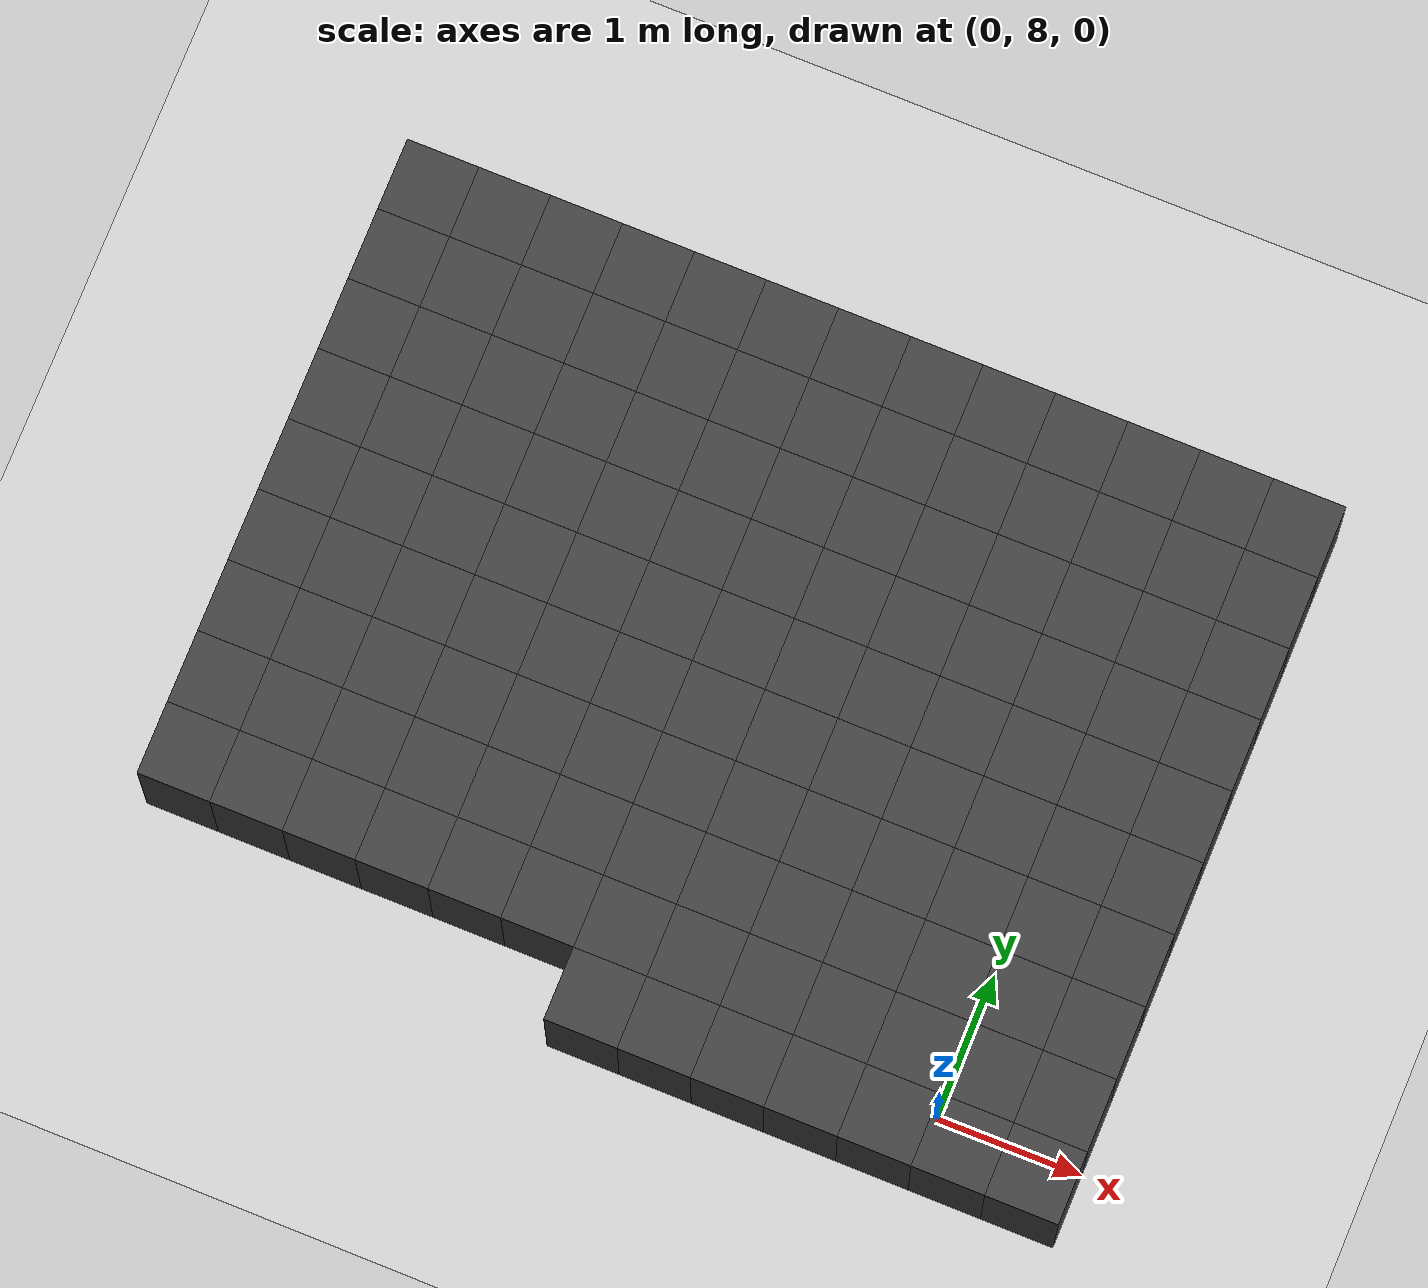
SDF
<sdf version="1.7">
 <world name="map_12818">
  <model name="ground_plane">
   <static>true</static>
   <link name="link">
    <collision name="collision">
     <geometry><plane><normal>0 0 1</normal><size>200 200</size></plane></geometry>
    </collision>
    <visual name="visual">
     <geometry><plane><normal>0 0 1</normal><size>200 200</size></plane></geometry>
     <material><ambient>0.8 0.8 0.8 1</ambient><diffuse>0.8 0.8 0.8 1</diffuse></material>
    </visual>
   </link>
  </model>
  <model name="maze_environment">
   <static>true</static>
   <link name="wall_14">
    <pose>-5.250 12.250 0.500 0 0 0</pose>
    <collision name="col"><geometry><box><size>0.5 0.5 1.0</size></box></geometry></collision>
    <visual name="vis">
     <geometry><box><size>0.5 0.5 1.0</size></box></geometry>
     <material><ambient>0.15 0.15 0.15 1</ambient><diffuse>0.25 0.25 0.25 1</diffuse></material>
    </visual>
   </link>
   <link name="wall_15">
    <pose>-4.750 12.250 0.500 0 0 0</pose>
    <collision name="col"><geometry><box><size>0.5 0.5 1.0</size></box></geometry></collision>
    <visual name="vis">
     <geometry><box><size>0.5 0.5 1.0</size></box></geometry>
     <material><ambient>0.15 0.15 0.15 1</ambient><diffuse>0.25 0.25 0.25 1</diffuse></material>
    </visual>
   </link>
   <link name="wall_16">
    <pose>-4.250 12.250 0.500 0 0 0</pose>
    <collision name="col"><geometry><box><size>0.5 0.5 1.0</size></box></geometry></collision>
    <visual name="vis">
     <geometry><box><size>0.5 0.5 1.0</size></box></geometry>
     <material><ambient>0.15 0.15 0.15 1</ambient><diffuse>0.25 0.25 0.25 1</diffuse></material>
    </visual>
   </link>
   <link name="wall_17">
    <pose>-3.750 12.250 0.500 0 0 0</pose>
    <collision name="col"><geometry><box><size>0.5 0.5 1.0</size></box></geometry></collision>
    <visual name="vis">
     <geometry><box><size>0.5 0.5 1.0</size></box></geometry>
     <material><ambient>0.15 0.15 0.15 1</ambient><diffuse>0.25 0.25 0.25 1</diffuse></material>
    </visual>
   </link>
   <link name="wall_18">
    <pose>-3.250 12.250 0.500 0 0 0</pose>
    <collision name="col"><geometry><box><size>0.5 0.5 1.0</size></box></geometry></collision>
    <visual name="vis">
     <geometry><box><size>0.5 0.5 1.0</size></box></geometry>
     <material><ambient>0.15 0.15 0.15 1</ambient><diffuse>0.25 0.25 0.25 1</diffuse></material>
    </visual>
   </link>
   <link name="wall_19">
    <pose>-2.750 12.250 0.500 0 0 0</pose>
    <collision name="col"><geometry><box><size>0.5 0.5 1.0</size></box></geometry></collision>
    <visual name="vis">
     <geometry><box><size>0.5 0.5 1.0</size></box></geometry>
     <material><ambient>0.15 0.15 0.15 1</ambient><diffuse>0.25 0.25 0.25 1</diffuse></material>
    </visual>
   </link>
   <link name="wall_20">
    <pose>-2.250 12.250 0.500 0 0 0</pose>
    <collision name="col"><geometry><box><size>0.5 0.5 1.0</size></box></geometry></collision>
    <visual name="vis">
     <geometry><box><size>0.5 0.5 1.0</size></box></geometry>
     <material><ambient>0.15 0.15 0.15 1</ambient><diffuse>0.25 0.25 0.25 1</diffuse></material>
    </visual>
   </link>
   <link name="wall_21">
    <pose>-1.750 12.250 0.500 0 0 0</pose>
    <collision name="col"><geometry><box><size>0.5 0.5 1.0</size></box></geometry></collision>
    <visual name="vis">
     <geometry><box><size>0.5 0.5 1.0</size></box></geometry>
     <material><ambient>0.15 0.15 0.15 1</ambient><diffuse>0.25 0.25 0.25 1</diffuse></material>
    </visual>
   </link>
   <link name="wall_22">
    <pose>-1.250 12.250 0.500 0 0 0</pose>
    <collision name="col"><geometry><box><size>0.5 0.5 1.0</size></box></geometry></collision>
    <visual name="vis">
     <geometry><box><size>0.5 0.5 1.0</size></box></geometry>
     <material><ambient>0.15 0.15 0.15 1</ambient><diffuse>0.25 0.25 0.25 1</diffuse></material>
    </visual>
   </link>
   <link name="wall_23">
    <pose>-0.750 12.250 0.500 0 0 0</pose>
    <collision name="col"><geometry><box><size>0.5 0.5 1.0</size></box></geometry></collision>
    <visual name="vis">
     <geometry><box><size>0.5 0.5 1.0</size></box></geometry>
     <material><ambient>0.15 0.15 0.15 1</ambient><diffuse>0.25 0.25 0.25 1</diffuse></material>
    </visual>
   </link>
   <link name="wall_24">
    <pose>-0.250 12.250 0.500 0 0 0</pose>
    <collision name="col"><geometry><box><size>0.5 0.5 1.0</size></box></geometry></collision>
    <visual name="vis">
     <geometry><box><size>0.5 0.5 1.0</size></box></geometry>
     <material><ambient>0.15 0.15 0.15 1</ambient><diffuse>0.25 0.25 0.25 1</diffuse></material>
    </visual>
   </link>
   <link name="wall_25">
    <pose>0.250 12.250 0.500 0 0 0</pose>
    <collision name="col"><geometry><box><size>0.5 0.5 1.0</size></box></geometry></collision>
    <visual name="vis">
     <geometry><box><size>0.5 0.5 1.0</size></box></geometry>
     <material><ambient>0.15 0.15 0.15 1</ambient><diffuse>0.25 0.25 0.25 1</diffuse></material>
    </visual>
   </link>
   <link name="wall_26">
    <pose>0.750 12.250 0.500 0 0 0</pose>
    <collision name="col"><geometry><box><size>0.5 0.5 1.0</size></box></geometry></collision>
    <visual name="vis">
     <geometry><box><size>0.5 0.5 1.0</size></box></geometry>
     <material><ambient>0.15 0.15 0.15 1</ambient><diffuse>0.25 0.25 0.25 1</diffuse></material>
    </visual>
   </link>
   <link name="wall_61">
    <pose>-5.250 11.750 0.500 0 0 0</pose>
    <collision name="col"><geometry><box><size>0.5 0.5 1.0</size></box></geometry></collision>
    <visual name="vis">
     <geometry><box><size>0.5 0.5 1.0</size></box></geometry>
     <material><ambient>0.15 0.15 0.15 1</ambient><diffuse>0.25 0.25 0.25 1</diffuse></material>
    </visual>
   </link>
   <link name="wall_62">
    <pose>-4.750 11.750 0.500 0 0 0</pose>
    <collision name="col"><geometry><box><size>0.5 0.5 1.0</size></box></geometry></collision>
    <visual name="vis">
     <geometry><box><size>0.5 0.5 1.0</size></box></geometry>
     <material><ambient>0.15 0.15 0.15 1</ambient><diffuse>0.25 0.25 0.25 1</diffuse></material>
    </visual>
   </link>
   <link name="wall_63">
    <pose>-4.250 11.750 0.500 0 0 0</pose>
    <collision name="col"><geometry><box><size>0.5 0.5 1.0</size></box></geometry></collision>
    <visual name="vis">
     <geometry><box><size>0.5 0.5 1.0</size></box></geometry>
     <material><ambient>0.15 0.15 0.15 1</ambient><diffuse>0.25 0.25 0.25 1</diffuse></material>
    </visual>
   </link>
   <link name="wall_64">
    <pose>-3.750 11.750 0.500 0 0 0</pose>
    <collision name="col"><geometry><box><size>0.5 0.5 1.0</size></box></geometry></collision>
    <visual name="vis">
     <geometry><box><size>0.5 0.5 1.0</size></box></geometry>
     <material><ambient>0.15 0.15 0.15 1</ambient><diffuse>0.25 0.25 0.25 1</diffuse></material>
    </visual>
   </link>
   <link name="wall_65">
    <pose>-3.250 11.750 0.500 0 0 0</pose>
    <collision name="col"><geometry><box><size>0.5 0.5 1.0</size></box></geometry></collision>
    <visual name="vis">
     <geometry><box><size>0.5 0.5 1.0</size></box></geometry>
     <material><ambient>0.15 0.15 0.15 1</ambient><diffuse>0.25 0.25 0.25 1</diffuse></material>
    </visual>
   </link>
   <link name="wall_66">
    <pose>-2.750 11.750 0.500 0 0 0</pose>
    <collision name="col"><geometry><box><size>0.5 0.5 1.0</size></box></geometry></collision>
    <visual name="vis">
     <geometry><box><size>0.5 0.5 1.0</size></box></geometry>
     <material><ambient>0.15 0.15 0.15 1</ambient><diffuse>0.25 0.25 0.25 1</diffuse></material>
    </visual>
   </link>
   <link name="wall_67">
    <pose>-2.250 11.750 0.500 0 0 0</pose>
    <collision name="col"><geometry><box><size>0.5 0.5 1.0</size></box></geometry></collision>
    <visual name="vis">
     <geometry><box><size>0.5 0.5 1.0</size></box></geometry>
     <material><ambient>0.15 0.15 0.15 1</ambient><diffuse>0.25 0.25 0.25 1</diffuse></material>
    </visual>
   </link>
   <link name="wall_68">
    <pose>-1.750 11.750 0.500 0 0 0</pose>
    <collision name="col"><geometry><box><size>0.5 0.5 1.0</size></box></geometry></collision>
    <visual name="vis">
     <geometry><box><size>0.5 0.5 1.0</size></box></geometry>
     <material><ambient>0.15 0.15 0.15 1</ambient><diffuse>0.25 0.25 0.25 1</diffuse></material>
    </visual>
   </link>
   <link name="wall_69">
    <pose>-1.250 11.750 0.500 0 0 0</pose>
    <collision name="col"><geometry><box><size>0.5 0.5 1.0</size></box></geometry></collision>
    <visual name="vis">
     <geometry><box><size>0.5 0.5 1.0</size></box></geometry>
     <material><ambient>0.15 0.15 0.15 1</ambient><diffuse>0.25 0.25 0.25 1</diffuse></material>
    </visual>
   </link>
   <link name="wall_70">
    <pose>-0.750 11.750 0.500 0 0 0</pose>
    <collision name="col"><geometry><box><size>0.5 0.5 1.0</size></box></geometry></collision>
    <visual name="vis">
     <geometry><box><size>0.5 0.5 1.0</size></box></geometry>
     <material><ambient>0.15 0.15 0.15 1</ambient><diffuse>0.25 0.25 0.25 1</diffuse></material>
    </visual>
   </link>
   <link name="wall_71">
    <pose>-0.250 11.750 0.500 0 0 0</pose>
    <collision name="col"><geometry><box><size>0.5 0.5 1.0</size></box></geometry></collision>
    <visual name="vis">
     <geometry><box><size>0.5 0.5 1.0</size></box></geometry>
     <material><ambient>0.15 0.15 0.15 1</ambient><diffuse>0.25 0.25 0.25 1</diffuse></material>
    </visual>
   </link>
   <link name="wall_72">
    <pose>0.250 11.750 0.500 0 0 0</pose>
    <collision name="col"><geometry><box><size>0.5 0.5 1.0</size></box></geometry></collision>
    <visual name="vis">
     <geometry><box><size>0.5 0.5 1.0</size></box></geometry>
     <material><ambient>0.15 0.15 0.15 1</ambient><diffuse>0.25 0.25 0.25 1</diffuse></material>
    </visual>
   </link>
   <link name="wall_73">
    <pose>0.750 11.750 0.500 0 0 0</pose>
    <collision name="col"><geometry><box><size>0.5 0.5 1.0</size></box></geometry></collision>
    <visual name="vis">
     <geometry><box><size>0.5 0.5 1.0</size></box></geometry>
     <material><ambient>0.15 0.15 0.15 1</ambient><diffuse>0.25 0.25 0.25 1</diffuse></material>
    </visual>
   </link>
   <link name="wall_108">
    <pose>-5.250 11.250 0.500 0 0 0</pose>
    <collision name="col"><geometry><box><size>0.5 0.5 1.0</size></box></geometry></collision>
    <visual name="vis">
     <geometry><box><size>0.5 0.5 1.0</size></box></geometry>
     <material><ambient>0.15 0.15 0.15 1</ambient><diffuse>0.25 0.25 0.25 1</diffuse></material>
    </visual>
   </link>
   <link name="wall_109">
    <pose>-4.750 11.250 0.500 0 0 0</pose>
    <collision name="col"><geometry><box><size>0.5 0.5 1.0</size></box></geometry></collision>
    <visual name="vis">
     <geometry><box><size>0.5 0.5 1.0</size></box></geometry>
     <material><ambient>0.15 0.15 0.15 1</ambient><diffuse>0.25 0.25 0.25 1</diffuse></material>
    </visual>
   </link>
   <link name="wall_110">
    <pose>-4.250 11.250 0.500 0 0 0</pose>
    <collision name="col"><geometry><box><size>0.5 0.5 1.0</size></box></geometry></collision>
    <visual name="vis">
     <geometry><box><size>0.5 0.5 1.0</size></box></geometry>
     <material><ambient>0.15 0.15 0.15 1</ambient><diffuse>0.25 0.25 0.25 1</diffuse></material>
    </visual>
   </link>
   <link name="wall_111">
    <pose>-3.750 11.250 0.500 0 0 0</pose>
    <collision name="col"><geometry><box><size>0.5 0.5 1.0</size></box></geometry></collision>
    <visual name="vis">
     <geometry><box><size>0.5 0.5 1.0</size></box></geometry>
     <material><ambient>0.15 0.15 0.15 1</ambient><diffuse>0.25 0.25 0.25 1</diffuse></material>
    </visual>
   </link>
   <link name="wall_112">
    <pose>-3.250 11.250 0.500 0 0 0</pose>
    <collision name="col"><geometry><box><size>0.5 0.5 1.0</size></box></geometry></collision>
    <visual name="vis">
     <geometry><box><size>0.5 0.5 1.0</size></box></geometry>
     <material><ambient>0.15 0.15 0.15 1</ambient><diffuse>0.25 0.25 0.25 1</diffuse></material>
    </visual>
   </link>
   <link name="wall_113">
    <pose>-2.750 11.250 0.500 0 0 0</pose>
    <collision name="col"><geometry><box><size>0.5 0.5 1.0</size></box></geometry></collision>
    <visual name="vis">
     <geometry><box><size>0.5 0.5 1.0</size></box></geometry>
     <material><ambient>0.15 0.15 0.15 1</ambient><diffuse>0.25 0.25 0.25 1</diffuse></material>
    </visual>
   </link>
   <link name="wall_114">
    <pose>-2.250 11.250 0.500 0 0 0</pose>
    <collision name="col"><geometry><box><size>0.5 0.5 1.0</size></box></geometry></collision>
    <visual name="vis">
     <geometry><box><size>0.5 0.5 1.0</size></box></geometry>
     <material><ambient>0.15 0.15 0.15 1</ambient><diffuse>0.25 0.25 0.25 1</diffuse></material>
    </visual>
   </link>
   <link name="wall_115">
    <pose>-1.750 11.250 0.500 0 0 0</pose>
    <collision name="col"><geometry><box><size>0.5 0.5 1.0</size></box></geometry></collision>
    <visual name="vis">
     <geometry><box><size>0.5 0.5 1.0</size></box></geometry>
     <material><ambient>0.15 0.15 0.15 1</ambient><diffuse>0.25 0.25 0.25 1</diffuse></material>
    </visual>
   </link>
   <link name="wall_116">
    <pose>-1.250 11.250 0.500 0 0 0</pose>
    <collision name="col"><geometry><box><size>0.5 0.5 1.0</size></box></geometry></collision>
    <visual name="vis">
     <geometry><box><size>0.5 0.5 1.0</size></box></geometry>
     <material><ambient>0.15 0.15 0.15 1</ambient><diffuse>0.25 0.25 0.25 1</diffuse></material>
    </visual>
   </link>
   <link name="wall_117">
    <pose>-0.750 11.250 0.500 0 0 0</pose>
    <collision name="col"><geometry><box><size>0.5 0.5 1.0</size></box></geometry></collision>
    <visual name="vis">
     <geometry><box><size>0.5 0.5 1.0</size></box></geometry>
     <material><ambient>0.15 0.15 0.15 1</ambient><diffuse>0.25 0.25 0.25 1</diffuse></material>
    </visual>
   </link>
   <link name="wall_118">
    <pose>-0.250 11.250 0.500 0 0 0</pose>
    <collision name="col"><geometry><box><size>0.5 0.5 1.0</size></box></geometry></collision>
    <visual name="vis">
     <geometry><box><size>0.5 0.5 1.0</size></box></geometry>
     <material><ambient>0.15 0.15 0.15 1</ambient><diffuse>0.25 0.25 0.25 1</diffuse></material>
    </visual>
   </link>
   <link name="wall_119">
    <pose>0.250 11.250 0.500 0 0 0</pose>
    <collision name="col"><geometry><box><size>0.5 0.5 1.0</size></box></geometry></collision>
    <visual name="vis">
     <geometry><box><size>0.5 0.5 1.0</size></box></geometry>
     <material><ambient>0.15 0.15 0.15 1</ambient><diffuse>0.25 0.25 0.25 1</diffuse></material>
    </visual>
   </link>
   <link name="wall_120">
    <pose>0.750 11.250 0.500 0 0 0</pose>
    <collision name="col"><geometry><box><size>0.5 0.5 1.0</size></box></geometry></collision>
    <visual name="vis">
     <geometry><box><size>0.5 0.5 1.0</size></box></geometry>
     <material><ambient>0.15 0.15 0.15 1</ambient><diffuse>0.25 0.25 0.25 1</diffuse></material>
    </visual>
   </link>
   <link name="wall_155">
    <pose>-5.250 10.750 0.500 0 0 0</pose>
    <collision name="col"><geometry><box><size>0.5 0.5 1.0</size></box></geometry></collision>
    <visual name="vis">
     <geometry><box><size>0.5 0.5 1.0</size></box></geometry>
     <material><ambient>0.15 0.15 0.15 1</ambient><diffuse>0.25 0.25 0.25 1</diffuse></material>
    </visual>
   </link>
   <link name="wall_156">
    <pose>-4.750 10.750 0.500 0 0 0</pose>
    <collision name="col"><geometry><box><size>0.5 0.5 1.0</size></box></geometry></collision>
    <visual name="vis">
     <geometry><box><size>0.5 0.5 1.0</size></box></geometry>
     <material><ambient>0.15 0.15 0.15 1</ambient><diffuse>0.25 0.25 0.25 1</diffuse></material>
    </visual>
   </link>
   <link name="wall_157">
    <pose>-4.250 10.750 0.500 0 0 0</pose>
    <collision name="col"><geometry><box><size>0.5 0.5 1.0</size></box></geometry></collision>
    <visual name="vis">
     <geometry><box><size>0.5 0.5 1.0</size></box></geometry>
     <material><ambient>0.15 0.15 0.15 1</ambient><diffuse>0.25 0.25 0.25 1</diffuse></material>
    </visual>
   </link>
   <link name="wall_158">
    <pose>-3.750 10.750 0.500 0 0 0</pose>
    <collision name="col"><geometry><box><size>0.5 0.5 1.0</size></box></geometry></collision>
    <visual name="vis">
     <geometry><box><size>0.5 0.5 1.0</size></box></geometry>
     <material><ambient>0.15 0.15 0.15 1</ambient><diffuse>0.25 0.25 0.25 1</diffuse></material>
    </visual>
   </link>
   <link name="wall_159">
    <pose>-3.250 10.750 0.500 0 0 0</pose>
    <collision name="col"><geometry><box><size>0.5 0.5 1.0</size></box></geometry></collision>
    <visual name="vis">
     <geometry><box><size>0.5 0.5 1.0</size></box></geometry>
     <material><ambient>0.15 0.15 0.15 1</ambient><diffuse>0.25 0.25 0.25 1</diffuse></material>
    </visual>
   </link>
   <link name="wall_160">
    <pose>-2.750 10.750 0.500 0 0 0</pose>
    <collision name="col"><geometry><box><size>0.5 0.5 1.0</size></box></geometry></collision>
    <visual name="vis">
     <geometry><box><size>0.5 0.5 1.0</size></box></geometry>
     <material><ambient>0.15 0.15 0.15 1</ambient><diffuse>0.25 0.25 0.25 1</diffuse></material>
    </visual>
   </link>
   <link name="wall_161">
    <pose>-2.250 10.750 0.500 0 0 0</pose>
    <collision name="col"><geometry><box><size>0.5 0.5 1.0</size></box></geometry></collision>
    <visual name="vis">
     <geometry><box><size>0.5 0.5 1.0</size></box></geometry>
     <material><ambient>0.15 0.15 0.15 1</ambient><diffuse>0.25 0.25 0.25 1</diffuse></material>
    </visual>
   </link>
   <link name="wall_162">
    <pose>-1.750 10.750 0.500 0 0 0</pose>
    <collision name="col"><geometry><box><size>0.5 0.5 1.0</size></box></geometry></collision>
    <visual name="vis">
     <geometry><box><size>0.5 0.5 1.0</size></box></geometry>
     <material><ambient>0.15 0.15 0.15 1</ambient><diffuse>0.25 0.25 0.25 1</diffuse></material>
    </visual>
   </link>
   <link name="wall_163">
    <pose>-1.250 10.750 0.500 0 0 0</pose>
    <collision name="col"><geometry><box><size>0.5 0.5 1.0</size></box></geometry></collision>
    <visual name="vis">
     <geometry><box><size>0.5 0.5 1.0</size></box></geometry>
     <material><ambient>0.15 0.15 0.15 1</ambient><diffuse>0.25 0.25 0.25 1</diffuse></material>
    </visual>
   </link>
   <link name="wall_164">
    <pose>-0.750 10.750 0.500 0 0 0</pose>
    <collision name="col"><geometry><box><size>0.5 0.5 1.0</size></box></geometry></collision>
    <visual name="vis">
     <geometry><box><size>0.5 0.5 1.0</size></box></geometry>
     <material><ambient>0.15 0.15 0.15 1</ambient><diffuse>0.25 0.25 0.25 1</diffuse></material>
    </visual>
   </link>
   <link name="wall_165">
    <pose>-0.250 10.750 0.500 0 0 0</pose>
    <collision name="col"><geometry><box><size>0.5 0.5 1.0</size></box></geometry></collision>
    <visual name="vis">
     <geometry><box><size>0.5 0.5 1.0</size></box></geometry>
     <material><ambient>0.15 0.15 0.15 1</ambient><diffuse>0.25 0.25 0.25 1</diffuse></material>
    </visual>
   </link>
   <link name="wall_166">
    <pose>0.250 10.750 0.500 0 0 0</pose>
    <collision name="col"><geometry><box><size>0.5 0.5 1.0</size></box></geometry></collision>
    <visual name="vis">
     <geometry><box><size>0.5 0.5 1.0</size></box></geometry>
     <material><ambient>0.15 0.15 0.15 1</ambient><diffuse>0.25 0.25 0.25 1</diffuse></material>
    </visual>
   </link>
   <link name="wall_167">
    <pose>0.750 10.750 0.500 0 0 0</pose>
    <collision name="col"><geometry><box><size>0.5 0.5 1.0</size></box></geometry></collision>
    <visual name="vis">
     <geometry><box><size>0.5 0.5 1.0</size></box></geometry>
     <material><ambient>0.15 0.15 0.15 1</ambient><diffuse>0.25 0.25 0.25 1</diffuse></material>
    </visual>
   </link>
   <link name="wall_204">
    <pose>-5.250 10.250 0.500 0 0 0</pose>
    <collision name="col"><geometry><box><size>0.5 0.5 1.0</size></box></geometry></collision>
    <visual name="vis">
     <geometry><box><size>0.5 0.5 1.0</size></box></geometry>
     <material><ambient>0.15 0.15 0.15 1</ambient><diffuse>0.25 0.25 0.25 1</diffuse></material>
    </visual>
   </link>
   <link name="wall_205">
    <pose>-4.750 10.250 0.500 0 0 0</pose>
    <collision name="col"><geometry><box><size>0.5 0.5 1.0</size></box></geometry></collision>
    <visual name="vis">
     <geometry><box><size>0.5 0.5 1.0</size></box></geometry>
     <material><ambient>0.15 0.15 0.15 1</ambient><diffuse>0.25 0.25 0.25 1</diffuse></material>
    </visual>
   </link>
   <link name="wall_206">
    <pose>-4.250 10.250 0.500 0 0 0</pose>
    <collision name="col"><geometry><box><size>0.5 0.5 1.0</size></box></geometry></collision>
    <visual name="vis">
     <geometry><box><size>0.5 0.5 1.0</size></box></geometry>
     <material><ambient>0.15 0.15 0.15 1</ambient><diffuse>0.25 0.25 0.25 1</diffuse></material>
    </visual>
   </link>
   <link name="wall_207">
    <pose>-3.750 10.250 0.500 0 0 0</pose>
    <collision name="col"><geometry><box><size>0.5 0.5 1.0</size></box></geometry></collision>
    <visual name="vis">
     <geometry><box><size>0.5 0.5 1.0</size></box></geometry>
     <material><ambient>0.15 0.15 0.15 1</ambient><diffuse>0.25 0.25 0.25 1</diffuse></material>
    </visual>
   </link>
   <link name="wall_208">
    <pose>-3.250 10.250 0.500 0 0 0</pose>
    <collision name="col"><geometry><box><size>0.5 0.5 1.0</size></box></geometry></collision>
    <visual name="vis">
     <geometry><box><size>0.5 0.5 1.0</size></box></geometry>
     <material><ambient>0.15 0.15 0.15 1</ambient><diffuse>0.25 0.25 0.25 1</diffuse></material>
    </visual>
   </link>
   <link name="wall_209">
    <pose>-2.750 10.250 0.500 0 0 0</pose>
    <collision name="col"><geometry><box><size>0.5 0.5 1.0</size></box></geometry></collision>
    <visual name="vis">
     <geometry><box><size>0.5 0.5 1.0</size></box></geometry>
     <material><ambient>0.15 0.15 0.15 1</ambient><diffuse>0.25 0.25 0.25 1</diffuse></material>
    </visual>
   </link>
   <link name="wall_210">
    <pose>-2.250 10.250 0.500 0 0 0</pose>
    <collision name="col"><geometry><box><size>0.5 0.5 1.0</size></box></geometry></collision>
    <visual name="vis">
     <geometry><box><size>0.5 0.5 1.0</size></box></geometry>
     <material><ambient>0.15 0.15 0.15 1</ambient><diffuse>0.25 0.25 0.25 1</diffuse></material>
    </visual>
   </link>
   <link name="wall_211">
    <pose>-1.750 10.250 0.500 0 0 0</pose>
    <collision name="col"><geometry><box><size>0.5 0.5 1.0</size></box></geometry></collision>
    <visual name="vis">
     <geometry><box><size>0.5 0.5 1.0</size></box></geometry>
     <material><ambient>0.15 0.15 0.15 1</ambient><diffuse>0.25 0.25 0.25 1</diffuse></material>
    </visual>
   </link>
   <link name="wall_212">
    <pose>-1.250 10.250 0.500 0 0 0</pose>
    <collision name="col"><geometry><box><size>0.5 0.5 1.0</size></box></geometry></collision>
    <visual name="vis">
     <geometry><box><size>0.5 0.5 1.0</size></box></geometry>
     <material><ambient>0.15 0.15 0.15 1</ambient><diffuse>0.25 0.25 0.25 1</diffuse></material>
    </visual>
   </link>
   <link name="wall_213">
    <pose>-0.750 10.250 0.500 0 0 0</pose>
    <collision name="col"><geometry><box><size>0.5 0.5 1.0</size></box></geometry></collision>
    <visual name="vis">
     <geometry><box><size>0.5 0.5 1.0</size></box></geometry>
     <material><ambient>0.15 0.15 0.15 1</ambient><diffuse>0.25 0.25 0.25 1</diffuse></material>
    </visual>
   </link>
   <link name="wall_214">
    <pose>-0.250 10.250 0.500 0 0 0</pose>
    <collision name="col"><geometry><box><size>0.5 0.5 1.0</size></box></geometry></collision>
    <visual name="vis">
     <geometry><box><size>0.5 0.5 1.0</size></box></geometry>
     <material><ambient>0.15 0.15 0.15 1</ambient><diffuse>0.25 0.25 0.25 1</diffuse></material>
    </visual>
   </link>
   <link name="wall_215">
    <pose>0.250 10.250 0.500 0 0 0</pose>
    <collision name="col"><geometry><box><size>0.5 0.5 1.0</size></box></geometry></collision>
    <visual name="vis">
     <geometry><box><size>0.5 0.5 1.0</size></box></geometry>
     <material><ambient>0.15 0.15 0.15 1</ambient><diffuse>0.25 0.25 0.25 1</diffuse></material>
    </visual>
   </link>
   <link name="wall_216">
    <pose>0.750 10.250 0.500 0 0 0</pose>
    <collision name="col"><geometry><box><size>0.5 0.5 1.0</size></box></geometry></collision>
    <visual name="vis">
     <geometry><box><size>0.5 0.5 1.0</size></box></geometry>
     <material><ambient>0.15 0.15 0.15 1</ambient><diffuse>0.25 0.25 0.25 1</diffuse></material>
    </visual>
   </link>
   <link name="wall_253">
    <pose>-5.250 9.750 0.500 0 0 0</pose>
    <collision name="col"><geometry><box><size>0.5 0.5 1.0</size></box></geometry></collision>
    <visual name="vis">
     <geometry><box><size>0.5 0.5 1.0</size></box></geometry>
     <material><ambient>0.15 0.15 0.15 1</ambient><diffuse>0.25 0.25 0.25 1</diffuse></material>
    </visual>
   </link>
   <link name="wall_254">
    <pose>-4.750 9.750 0.500 0 0 0</pose>
    <collision name="col"><geometry><box><size>0.5 0.5 1.0</size></box></geometry></collision>
    <visual name="vis">
     <geometry><box><size>0.5 0.5 1.0</size></box></geometry>
     <material><ambient>0.15 0.15 0.15 1</ambient><diffuse>0.25 0.25 0.25 1</diffuse></material>
    </visual>
   </link>
   <link name="wall_255">
    <pose>-4.250 9.750 0.500 0 0 0</pose>
    <collision name="col"><geometry><box><size>0.5 0.5 1.0</size></box></geometry></collision>
    <visual name="vis">
     <geometry><box><size>0.5 0.5 1.0</size></box></geometry>
     <material><ambient>0.15 0.15 0.15 1</ambient><diffuse>0.25 0.25 0.25 1</diffuse></material>
    </visual>
   </link>
   <link name="wall_256">
    <pose>-3.750 9.750 0.500 0 0 0</pose>
    <collision name="col"><geometry><box><size>0.5 0.5 1.0</size></box></geometry></collision>
    <visual name="vis">
     <geometry><box><size>0.5 0.5 1.0</size></box></geometry>
     <material><ambient>0.15 0.15 0.15 1</ambient><diffuse>0.25 0.25 0.25 1</diffuse></material>
    </visual>
   </link>
   <link name="wall_257">
    <pose>-3.250 9.750 0.500 0 0 0</pose>
    <collision name="col"><geometry><box><size>0.5 0.5 1.0</size></box></geometry></collision>
    <visual name="vis">
     <geometry><box><size>0.5 0.5 1.0</size></box></geometry>
     <material><ambient>0.15 0.15 0.15 1</ambient><diffuse>0.25 0.25 0.25 1</diffuse></material>
    </visual>
   </link>
   <link name="wall_258">
    <pose>-2.750 9.750 0.500 0 0 0</pose>
    <collision name="col"><geometry><box><size>0.5 0.5 1.0</size></box></geometry></collision>
    <visual name="vis">
     <geometry><box><size>0.5 0.5 1.0</size></box></geometry>
     <material><ambient>0.15 0.15 0.15 1</ambient><diffuse>0.25 0.25 0.25 1</diffuse></material>
    </visual>
   </link>
   <link name="wall_259">
    <pose>-2.250 9.750 0.500 0 0 0</pose>
    <collision name="col"><geometry><box><size>0.5 0.5 1.0</size></box></geometry></collision>
    <visual name="vis">
     <geometry><box><size>0.5 0.5 1.0</size></box></geometry>
     <material><ambient>0.15 0.15 0.15 1</ambient><diffuse>0.25 0.25 0.25 1</diffuse></material>
    </visual>
   </link>
   <link name="wall_260">
    <pose>-1.750 9.750 0.500 0 0 0</pose>
    <collision name="col"><geometry><box><size>0.5 0.5 1.0</size></box></geometry></collision>
    <visual name="vis">
     <geometry><box><size>0.5 0.5 1.0</size></box></geometry>
     <material><ambient>0.15 0.15 0.15 1</ambient><diffuse>0.25 0.25 0.25 1</diffuse></material>
    </visual>
   </link>
   <link name="wall_261">
    <pose>-1.250 9.750 0.500 0 0 0</pose>
    <collision name="col"><geometry><box><size>0.5 0.5 1.0</size></box></geometry></collision>
    <visual name="vis">
     <geometry><box><size>0.5 0.5 1.0</size></box></geometry>
     <material><ambient>0.15 0.15 0.15 1</ambient><diffuse>0.25 0.25 0.25 1</diffuse></material>
    </visual>
   </link>
   <link name="wall_262">
    <pose>-0.750 9.750 0.500 0 0 0</pose>
    <collision name="col"><geometry><box><size>0.5 0.5 1.0</size></box></geometry></collision>
    <visual name="vis">
     <geometry><box><size>0.5 0.5 1.0</size></box></geometry>
     <material><ambient>0.15 0.15 0.15 1</ambient><diffuse>0.25 0.25 0.25 1</diffuse></material>
    </visual>
   </link>
   <link name="wall_263">
    <pose>-0.250 9.750 0.500 0 0 0</pose>
    <collision name="col"><geometry><box><size>0.5 0.5 1.0</size></box></geometry></collision>
    <visual name="vis">
     <geometry><box><size>0.5 0.5 1.0</size></box></geometry>
     <material><ambient>0.15 0.15 0.15 1</ambient><diffuse>0.25 0.25 0.25 1</diffuse></material>
    </visual>
   </link>
   <link name="wall_264">
    <pose>0.250 9.750 0.500 0 0 0</pose>
    <collision name="col"><geometry><box><size>0.5 0.5 1.0</size></box></geometry></collision>
    <visual name="vis">
     <geometry><box><size>0.5 0.5 1.0</size></box></geometry>
     <material><ambient>0.15 0.15 0.15 1</ambient><diffuse>0.25 0.25 0.25 1</diffuse></material>
    </visual>
   </link>
   <link name="wall_265">
    <pose>0.750 9.750 0.500 0 0 0</pose>
    <collision name="col"><geometry><box><size>0.5 0.5 1.0</size></box></geometry></collision>
    <visual name="vis">
     <geometry><box><size>0.5 0.5 1.0</size></box></geometry>
     <material><ambient>0.15 0.15 0.15 1</ambient><diffuse>0.25 0.25 0.25 1</diffuse></material>
    </visual>
   </link>
   <link name="wall_302">
    <pose>-5.250 9.250 0.500 0 0 0</pose>
    <collision name="col"><geometry><box><size>0.5 0.5 1.0</size></box></geometry></collision>
    <visual name="vis">
     <geometry><box><size>0.5 0.5 1.0</size></box></geometry>
     <material><ambient>0.15 0.15 0.15 1</ambient><diffuse>0.25 0.25 0.25 1</diffuse></material>
    </visual>
   </link>
   <link name="wall_303">
    <pose>-4.750 9.250 0.500 0 0 0</pose>
    <collision name="col"><geometry><box><size>0.5 0.5 1.0</size></box></geometry></collision>
    <visual name="vis">
     <geometry><box><size>0.5 0.5 1.0</size></box></geometry>
     <material><ambient>0.15 0.15 0.15 1</ambient><diffuse>0.25 0.25 0.25 1</diffuse></material>
    </visual>
   </link>
   <link name="wall_304">
    <pose>-4.250 9.250 0.500 0 0 0</pose>
    <collision name="col"><geometry><box><size>0.5 0.5 1.0</size></box></geometry></collision>
    <visual name="vis">
     <geometry><box><size>0.5 0.5 1.0</size></box></geometry>
     <material><ambient>0.15 0.15 0.15 1</ambient><diffuse>0.25 0.25 0.25 1</diffuse></material>
    </visual>
   </link>
   <link name="wall_305">
    <pose>-3.750 9.250 0.500 0 0 0</pose>
    <collision name="col"><geometry><box><size>0.5 0.5 1.0</size></box></geometry></collision>
    <visual name="vis">
     <geometry><box><size>0.5 0.5 1.0</size></box></geometry>
     <material><ambient>0.15 0.15 0.15 1</ambient><diffuse>0.25 0.25 0.25 1</diffuse></material>
    </visual>
   </link>
   <link name="wall_306">
    <pose>-3.250 9.250 0.500 0 0 0</pose>
    <collision name="col"><geometry><box><size>0.5 0.5 1.0</size></box></geometry></collision>
    <visual name="vis">
     <geometry><box><size>0.5 0.5 1.0</size></box></geometry>
     <material><ambient>0.15 0.15 0.15 1</ambient><diffuse>0.25 0.25 0.25 1</diffuse></material>
    </visual>
   </link>
   <link name="wall_307">
    <pose>-2.750 9.250 0.500 0 0 0</pose>
    <collision name="col"><geometry><box><size>0.5 0.5 1.0</size></box></geometry></collision>
    <visual name="vis">
     <geometry><box><size>0.5 0.5 1.0</size></box></geometry>
     <material><ambient>0.15 0.15 0.15 1</ambient><diffuse>0.25 0.25 0.25 1</diffuse></material>
    </visual>
   </link>
   <link name="wall_308">
    <pose>-2.250 9.250 0.500 0 0 0</pose>
    <collision name="col"><geometry><box><size>0.5 0.5 1.0</size></box></geometry></collision>
    <visual name="vis">
     <geometry><box><size>0.5 0.5 1.0</size></box></geometry>
     <material><ambient>0.15 0.15 0.15 1</ambient><diffuse>0.25 0.25 0.25 1</diffuse></material>
    </visual>
   </link>
   <link name="wall_309">
    <pose>-1.750 9.250 0.500 0 0 0</pose>
    <collision name="col"><geometry><box><size>0.5 0.5 1.0</size></box></geometry></collision>
    <visual name="vis">
     <geometry><box><size>0.5 0.5 1.0</size></box></geometry>
     <material><ambient>0.15 0.15 0.15 1</ambient><diffuse>0.25 0.25 0.25 1</diffuse></material>
    </visual>
   </link>
   <link name="wall_310">
    <pose>-1.250 9.250 0.500 0 0 0</pose>
    <collision name="col"><geometry><box><size>0.5 0.5 1.0</size></box></geometry></collision>
    <visual name="vis">
     <geometry><box><size>0.5 0.5 1.0</size></box></geometry>
     <material><ambient>0.15 0.15 0.15 1</ambient><diffuse>0.25 0.25 0.25 1</diffuse></material>
    </visual>
   </link>
   <link name="wall_311">
    <pose>-0.750 9.250 0.500 0 0 0</pose>
    <collision name="col"><geometry><box><size>0.5 0.5 1.0</size></box></geometry></collision>
    <visual name="vis">
     <geometry><box><size>0.5 0.5 1.0</size></box></geometry>
     <material><ambient>0.15 0.15 0.15 1</ambient><diffuse>0.25 0.25 0.25 1</diffuse></material>
    </visual>
   </link>
   <link name="wall_312">
    <pose>-0.250 9.250 0.500 0 0 0</pose>
    <collision name="col"><geometry><box><size>0.5 0.5 1.0</size></box></geometry></collision>
    <visual name="vis">
     <geometry><box><size>0.5 0.5 1.0</size></box></geometry>
     <material><ambient>0.15 0.15 0.15 1</ambient><diffuse>0.25 0.25 0.25 1</diffuse></material>
    </visual>
   </link>
   <link name="wall_313">
    <pose>0.250 9.250 0.500 0 0 0</pose>
    <collision name="col"><geometry><box><size>0.5 0.5 1.0</size></box></geometry></collision>
    <visual name="vis">
     <geometry><box><size>0.5 0.5 1.0</size></box></geometry>
     <material><ambient>0.15 0.15 0.15 1</ambient><diffuse>0.25 0.25 0.25 1</diffuse></material>
    </visual>
   </link>
   <link name="wall_314">
    <pose>0.750 9.250 0.500 0 0 0</pose>
    <collision name="col"><geometry><box><size>0.5 0.5 1.0</size></box></geometry></collision>
    <visual name="vis">
     <geometry><box><size>0.5 0.5 1.0</size></box></geometry>
     <material><ambient>0.15 0.15 0.15 1</ambient><diffuse>0.25 0.25 0.25 1</diffuse></material>
    </visual>
   </link>
   <link name="wall_351">
    <pose>-5.250 8.750 0.500 0 0 0</pose>
    <collision name="col"><geometry><box><size>0.5 0.5 1.0</size></box></geometry></collision>
    <visual name="vis">
     <geometry><box><size>0.5 0.5 1.0</size></box></geometry>
     <material><ambient>0.15 0.15 0.15 1</ambient><diffuse>0.25 0.25 0.25 1</diffuse></material>
    </visual>
   </link>
   <link name="wall_352">
    <pose>-4.750 8.750 0.500 0 0 0</pose>
    <collision name="col"><geometry><box><size>0.5 0.5 1.0</size></box></geometry></collision>
    <visual name="vis">
     <geometry><box><size>0.5 0.5 1.0</size></box></geometry>
     <material><ambient>0.15 0.15 0.15 1</ambient><diffuse>0.25 0.25 0.25 1</diffuse></material>
    </visual>
   </link>
   <link name="wall_353">
    <pose>-4.250 8.750 0.500 0 0 0</pose>
    <collision name="col"><geometry><box><size>0.5 0.5 1.0</size></box></geometry></collision>
    <visual name="vis">
     <geometry><box><size>0.5 0.5 1.0</size></box></geometry>
     <material><ambient>0.15 0.15 0.15 1</ambient><diffuse>0.25 0.25 0.25 1</diffuse></material>
    </visual>
   </link>
   <link name="wall_354">
    <pose>-3.750 8.750 0.500 0 0 0</pose>
    <collision name="col"><geometry><box><size>0.5 0.5 1.0</size></box></geometry></collision>
    <visual name="vis">
     <geometry><box><size>0.5 0.5 1.0</size></box></geometry>
     <material><ambient>0.15 0.15 0.15 1</ambient><diffuse>0.25 0.25 0.25 1</diffuse></material>
    </visual>
   </link>
   <link name="wall_355">
    <pose>-3.250 8.750 0.500 0 0 0</pose>
    <collision name="col"><geometry><box><size>0.5 0.5 1.0</size></box></geometry></collision>
    <visual name="vis">
     <geometry><box><size>0.5 0.5 1.0</size></box></geometry>
     <material><ambient>0.15 0.15 0.15 1</ambient><diffuse>0.25 0.25 0.25 1</diffuse></material>
    </visual>
   </link>
   <link name="wall_356">
    <pose>-2.750 8.750 0.500 0 0 0</pose>
    <collision name="col"><geometry><box><size>0.5 0.5 1.0</size></box></geometry></collision>
    <visual name="vis">
     <geometry><box><size>0.5 0.5 1.0</size></box></geometry>
     <material><ambient>0.15 0.15 0.15 1</ambient><diffuse>0.25 0.25 0.25 1</diffuse></material>
    </visual>
   </link>
   <link name="wall_357">
    <pose>-2.250 8.750 0.500 0 0 0</pose>
    <collision name="col"><geometry><box><size>0.5 0.5 1.0</size></box></geometry></collision>
    <visual name="vis">
     <geometry><box><size>0.5 0.5 1.0</size></box></geometry>
     <material><ambient>0.15 0.15 0.15 1</ambient><diffuse>0.25 0.25 0.25 1</diffuse></material>
    </visual>
   </link>
   <link name="wall_358">
    <pose>-1.750 8.750 0.500 0 0 0</pose>
    <collision name="col"><geometry><box><size>0.5 0.5 1.0</size></box></geometry></collision>
    <visual name="vis">
     <geometry><box><size>0.5 0.5 1.0</size></box></geometry>
     <material><ambient>0.15 0.15 0.15 1</ambient><diffuse>0.25 0.25 0.25 1</diffuse></material>
    </visual>
   </link>
   <link name="wall_359">
    <pose>-1.250 8.750 0.500 0 0 0</pose>
    <collision name="col"><geometry><box><size>0.5 0.5 1.0</size></box></geometry></collision>
    <visual name="vis">
     <geometry><box><size>0.5 0.5 1.0</size></box></geometry>
     <material><ambient>0.15 0.15 0.15 1</ambient><diffuse>0.25 0.25 0.25 1</diffuse></material>
    </visual>
   </link>
   <link name="wall_360">
    <pose>-0.750 8.750 0.500 0 0 0</pose>
    <collision name="col"><geometry><box><size>0.5 0.5 1.0</size></box></geometry></collision>
    <visual name="vis">
     <geometry><box><size>0.5 0.5 1.0</size></box></geometry>
     <material><ambient>0.15 0.15 0.15 1</ambient><diffuse>0.25 0.25 0.25 1</diffuse></material>
    </visual>
   </link>
   <link name="wall_361">
    <pose>-0.250 8.750 0.500 0 0 0</pose>
    <collision name="col"><geometry><box><size>0.5 0.5 1.0</size></box></geometry></collision>
    <visual name="vis">
     <geometry><box><size>0.5 0.5 1.0</size></box></geometry>
     <material><ambient>0.15 0.15 0.15 1</ambient><diffuse>0.25 0.25 0.25 1</diffuse></material>
    </visual>
   </link>
   <link name="wall_362">
    <pose>0.250 8.750 0.500 0 0 0</pose>
    <collision name="col"><geometry><box><size>0.5 0.5 1.0</size></box></geometry></collision>
    <visual name="vis">
     <geometry><box><size>0.5 0.5 1.0</size></box></geometry>
     <material><ambient>0.15 0.15 0.15 1</ambient><diffuse>0.25 0.25 0.25 1</diffuse></material>
    </visual>
   </link>
   <link name="wall_363">
    <pose>0.750 8.750 0.500 0 0 0</pose>
    <collision name="col"><geometry><box><size>0.5 0.5 1.0</size></box></geometry></collision>
    <visual name="vis">
     <geometry><box><size>0.5 0.5 1.0</size></box></geometry>
     <material><ambient>0.15 0.15 0.15 1</ambient><diffuse>0.25 0.25 0.25 1</diffuse></material>
    </visual>
   </link>
   <link name="wall_396">
    <pose>-5.250 8.250 0.500 0 0 0</pose>
    <collision name="col"><geometry><box><size>0.5 0.5 1.0</size></box></geometry></collision>
    <visual name="vis">
     <geometry><box><size>0.5 0.5 1.0</size></box></geometry>
     <material><ambient>0.15 0.15 0.15 1</ambient><diffuse>0.25 0.25 0.25 1</diffuse></material>
    </visual>
   </link>
   <link name="wall_397">
    <pose>-4.750 8.250 0.500 0 0 0</pose>
    <collision name="col"><geometry><box><size>0.5 0.5 1.0</size></box></geometry></collision>
    <visual name="vis">
     <geometry><box><size>0.5 0.5 1.0</size></box></geometry>
     <material><ambient>0.15 0.15 0.15 1</ambient><diffuse>0.25 0.25 0.25 1</diffuse></material>
    </visual>
   </link>
   <link name="wall_398">
    <pose>-4.250 8.250 0.500 0 0 0</pose>
    <collision name="col"><geometry><box><size>0.5 0.5 1.0</size></box></geometry></collision>
    <visual name="vis">
     <geometry><box><size>0.5 0.5 1.0</size></box></geometry>
     <material><ambient>0.15 0.15 0.15 1</ambient><diffuse>0.25 0.25 0.25 1</diffuse></material>
    </visual>
   </link>
   <link name="wall_399">
    <pose>-3.750 8.250 0.500 0 0 0</pose>
    <collision name="col"><geometry><box><size>0.5 0.5 1.0</size></box></geometry></collision>
    <visual name="vis">
     <geometry><box><size>0.5 0.5 1.0</size></box></geometry>
     <material><ambient>0.15 0.15 0.15 1</ambient><diffuse>0.25 0.25 0.25 1</diffuse></material>
    </visual>
   </link>
   <link name="wall_400">
    <pose>-3.250 8.250 0.500 0 0 0</pose>
    <collision name="col"><geometry><box><size>0.5 0.5 1.0</size></box></geometry></collision>
    <visual name="vis">
     <geometry><box><size>0.5 0.5 1.0</size></box></geometry>
     <material><ambient>0.15 0.15 0.15 1</ambient><diffuse>0.25 0.25 0.25 1</diffuse></material>
    </visual>
   </link>
   <link name="wall_401">
    <pose>-2.750 8.250 0.500 0 0 0</pose>
    <collision name="col"><geometry><box><size>0.5 0.5 1.0</size></box></geometry></collision>
    <visual name="vis">
     <geometry><box><size>0.5 0.5 1.0</size></box></geometry>
     <material><ambient>0.15 0.15 0.15 1</ambient><diffuse>0.25 0.25 0.25 1</diffuse></material>
    </visual>
   </link>
   <link name="wall_402">
    <pose>-2.250 8.250 0.500 0 0 0</pose>
    <collision name="col"><geometry><box><size>0.5 0.5 1.0</size></box></geometry></collision>
    <visual name="vis">
     <geometry><box><size>0.5 0.5 1.0</size></box></geometry>
     <material><ambient>0.15 0.15 0.15 1</ambient><diffuse>0.25 0.25 0.25 1</diffuse></material>
    </visual>
   </link>
   <link name="wall_403">
    <pose>-1.750 8.250 0.500 0 0 0</pose>
    <collision name="col"><geometry><box><size>0.5 0.5 1.0</size></box></geometry></collision>
    <visual name="vis">
     <geometry><box><size>0.5 0.5 1.0</size></box></geometry>
     <material><ambient>0.15 0.15 0.15 1</ambient><diffuse>0.25 0.25 0.25 1</diffuse></material>
    </visual>
   </link>
   <link name="wall_404">
    <pose>-1.250 8.250 0.500 0 0 0</pose>
    <collision name="col"><geometry><box><size>0.5 0.5 1.0</size></box></geometry></collision>
    <visual name="vis">
     <geometry><box><size>0.5 0.5 1.0</size></box></geometry>
     <material><ambient>0.15 0.15 0.15 1</ambient><diffuse>0.25 0.25 0.25 1</diffuse></material>
    </visual>
   </link>
   <link name="wall_405">
    <pose>-0.750 8.250 0.500 0 0 0</pose>
    <collision name="col"><geometry><box><size>0.5 0.5 1.0</size></box></geometry></collision>
    <visual name="vis">
     <geometry><box><size>0.5 0.5 1.0</size></box></geometry>
     <material><ambient>0.15 0.15 0.15 1</ambient><diffuse>0.25 0.25 0.25 1</diffuse></material>
    </visual>
   </link>
   <link name="wall_406">
    <pose>-0.250 8.250 0.500 0 0 0</pose>
    <collision name="col"><geometry><box><size>0.5 0.5 1.0</size></box></geometry></collision>
    <visual name="vis">
     <geometry><box><size>0.5 0.5 1.0</size></box></geometry>
     <material><ambient>0.15 0.15 0.15 1</ambient><diffuse>0.25 0.25 0.25 1</diffuse></material>
    </visual>
   </link>
   <link name="wall_407">
    <pose>0.250 8.250 0.500 0 0 0</pose>
    <collision name="col"><geometry><box><size>0.5 0.5 1.0</size></box></geometry></collision>
    <visual name="vis">
     <geometry><box><size>0.5 0.5 1.0</size></box></geometry>
     <material><ambient>0.15 0.15 0.15 1</ambient><diffuse>0.25 0.25 0.25 1</diffuse></material>
    </visual>
   </link>
   <link name="wall_408">
    <pose>0.750 8.250 0.500 0 0 0</pose>
    <collision name="col"><geometry><box><size>0.5 0.5 1.0</size></box></geometry></collision>
    <visual name="vis">
     <geometry><box><size>0.5 0.5 1.0</size></box></geometry>
     <material><ambient>0.15 0.15 0.15 1</ambient><diffuse>0.25 0.25 0.25 1</diffuse></material>
    </visual>
   </link>
   <link name="wall_447">
    <pose>-2.250 7.750 0.500 0 0 0</pose>
    <collision name="col"><geometry><box><size>0.5 0.5 1.0</size></box></geometry></collision>
    <visual name="vis">
     <geometry><box><size>0.5 0.5 1.0</size></box></geometry>
     <material><ambient>0.15 0.15 0.15 1</ambient><diffuse>0.25 0.25 0.25 1</diffuse></material>
    </visual>
   </link>
   <link name="wall_448">
    <pose>-1.750 7.750 0.500 0 0 0</pose>
    <collision name="col"><geometry><box><size>0.5 0.5 1.0</size></box></geometry></collision>
    <visual name="vis">
     <geometry><box><size>0.5 0.5 1.0</size></box></geometry>
     <material><ambient>0.15 0.15 0.15 1</ambient><diffuse>0.25 0.25 0.25 1</diffuse></material>
    </visual>
   </link>
   <link name="wall_449">
    <pose>-1.250 7.750 0.500 0 0 0</pose>
    <collision name="col"><geometry><box><size>0.5 0.5 1.0</size></box></geometry></collision>
    <visual name="vis">
     <geometry><box><size>0.5 0.5 1.0</size></box></geometry>
     <material><ambient>0.15 0.15 0.15 1</ambient><diffuse>0.25 0.25 0.25 1</diffuse></material>
    </visual>
   </link>
   <link name="wall_450">
    <pose>-0.750 7.750 0.500 0 0 0</pose>
    <collision name="col"><geometry><box><size>0.5 0.5 1.0</size></box></geometry></collision>
    <visual name="vis">
     <geometry><box><size>0.5 0.5 1.0</size></box></geometry>
     <material><ambient>0.15 0.15 0.15 1</ambient><diffuse>0.25 0.25 0.25 1</diffuse></material>
    </visual>
   </link>
   <link name="wall_451">
    <pose>-0.250 7.750 0.500 0 0 0</pose>
    <collision name="col"><geometry><box><size>0.5 0.5 1.0</size></box></geometry></collision>
    <visual name="vis">
     <geometry><box><size>0.5 0.5 1.0</size></box></geometry>
     <material><ambient>0.15 0.15 0.15 1</ambient><diffuse>0.25 0.25 0.25 1</diffuse></material>
    </visual>
   </link>
   <link name="wall_452">
    <pose>0.250 7.750 0.500 0 0 0</pose>
    <collision name="col"><geometry><box><size>0.5 0.5 1.0</size></box></geometry></collision>
    <visual name="vis">
     <geometry><box><size>0.5 0.5 1.0</size></box></geometry>
     <material><ambient>0.15 0.15 0.15 1</ambient><diffuse>0.25 0.25 0.25 1</diffuse></material>
    </visual>
   </link>
   <link name="wall_453">
    <pose>0.750 7.750 0.500 0 0 0</pose>
    <collision name="col"><geometry><box><size>0.5 0.5 1.0</size></box></geometry></collision>
    <visual name="vis">
     <geometry><box><size>0.5 0.5 1.0</size></box></geometry>
     <material><ambient>0.15 0.15 0.15 1</ambient><diffuse>0.25 0.25 0.25 1</diffuse></material>
    </visual>
   </link>
  </model>
 </world>
</sdf>
